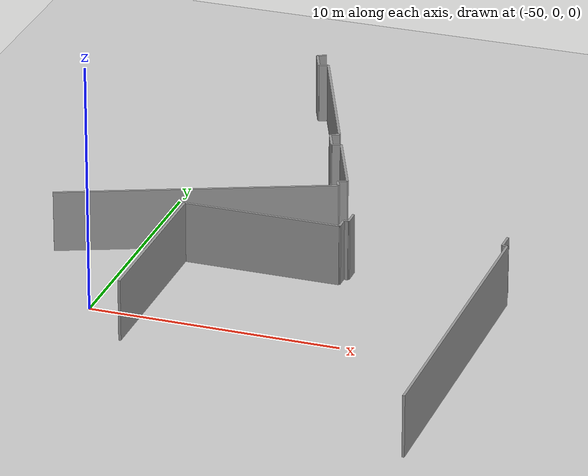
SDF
<sdf version="1.6">
 <world name="default">
  <model name="ground_plane">
   <static>1</static>
   <link name="link">
    <collision name="collision">
     <geometry><plane><normal>0 0 1</normal><size>100 100</size></plane></geometry>
     <surface><friction><ode><mu>100</mu><mu2>50</mu2></ode></friction></surface>
    </collision>
    <visual name="visual">
     <cast_shadows>0</cast_shadows>
     <geometry><plane><normal>0 0 1</normal><size>100 100</size></plane></geometry>
     <material>
      <script><uri>file://media/materials/scripts/gazebo.material</uri><name>Gazebo/Grey</name></script>
     </material>
    </visual>
   </link>
  </model>
  <model name="0510032192_A_40_1_203">
   <static>1</static>
   <link name="Wall_179">
    <collision name="Wall_179_Collision">
     <geometry><box><size>0.381804063913 0.1 2.5</size></box></geometry>
     <pose>0.190902031956 0 1.25 0 0 0</pose>
    </collision>
    <visual name="Wall_179_Visual">
     <pose>0.190902031956 0 1.25 0 0 0</pose>
     <geometry><box><size>0.381804063913 0.1 2.5</size></box></geometry>
     <material>
      <script><uri>file://media/materials/scripts/gazebo.material</uri><name>Gazebo/Grey</name></script>
      <ambient>1 1 1 1</ambient>
     </material>
    </visual>
    <pose>17.2577478124 -3.18431437341 0 0 0 -2.71505056109</pose>
   </link>
   <link name="Wall_180">
    <collision name="Wall_180_Collision">
     <geometry><box><size>0.983292808568 0.1 2.5</size></box></geometry>
     <pose>0.491646404284 0 1.25 0 0 0</pose>
    </collision>
    <visual name="Wall_180_Visual">
     <pose>0.491646404284 0 1.25 0 0 0</pose>
     <geometry><box><size>0.983292808568 0.1 2.5</size></box></geometry>
     <material>
      <script><uri>file://media/materials/scripts/gazebo.material</uri><name>Gazebo/Grey</name></script>
      <ambient>1 1 1 1</ambient>
     </material>
    </visual>
    <pose>16.9101527004 -3.34227633494 0 0 0 -1.18198060969</pose>
   </link>
   <link name="Wall_181">
    <collision name="Wall_181_Collision">
     <geometry><box><size>0.380269495872 0.1 2.5</size></box></geometry>
     <pose>0.190134747936 0 1.25 0 0 0</pose>
    </collision>
    <visual name="Wall_181_Visual">
     <pose>0.190134747936 0 1.25 0 0 0</pose>
     <geometry><box><size>0.380269495872 0.1 2.5</size></box></geometry>
     <material>
      <script><uri>file://media/materials/scripts/gazebo.material</uri><name>Gazebo/Grey</name></script>
      <ambient>1 1 1 1</ambient>
     </material>
    </visual>
    <pose>17.2829119193 -4.25217485242 0 0 0 0.374238072979</pose>
   </link>
   <link name="Wall_182">
    <collision name="Wall_182_Collision">
     <geometry><box><size>6.79059436841 0.1 2.5</size></box></geometry>
     <pose>3.39529718421 0 1.25 0 0 0</pose>
    </collision>
    <visual name="Wall_182_Visual">
     <pose>3.39529718421 0 1.25 0 0 0</pose>
     <geometry><box><size>6.79059436841 0.1 2.5</size></box></geometry>
     <material>
      <script><uri>file://media/materials/scripts/gazebo.material</uri><name>Gazebo/Grey</name></script>
      <ambient>1 1 1 1</ambient>
     </material>
    </visual>
    <pose>17.6368616038 -4.11316222588 0 0 0 -1.18194463115</pose>
   </link>
   <link name="Wall_183">
    <collision name="Wall_183_Collision">
     <geometry><box><size>0.365679224966 0.1 2.5</size></box></geometry>
     <pose>0.182839612483 0 1.25 0 0 0</pose>
    </collision>
    <visual name="Wall_183_Visual">
     <pose>0.182839612483 0 1.25 0 0 0</pose>
     <geometry><box><size>0.365679224966 0.1 2.5</size></box></geometry>
     <material>
      <script><uri>file://media/materials/scripts/gazebo.material</uri><name>Gazebo/Grey</name></script>
      <ambient>1 1 1 1</ambient>
     </material>
    </visual>
    <pose>20.2113530791 -10.396804921 0 0 0 -2.77586606899</pose>
   </link>
   <link name="Wall_184">
    <collision name="Wall_184_Collision">
     <geometry><box><size>0.974312886365 0.1 2.5</size></box></geometry>
     <pose>0.487156443183 0 1.25 0 0 0</pose>
    </collision>
    <visual name="Wall_184_Visual">
     <pose>0.487156443183 0 1.25 0 0 0</pose>
     <geometry><box><size>0.974312886365 0.1 2.5</size></box></geometry>
     <material>
      <script><uri>file://media/materials/scripts/gazebo.material</uri><name>Gazebo/Grey</name></script>
      <ambient>1 1 1 1</ambient>
     </material>
    </visual>
    <pose>19.8698583566 -10.5275820216 0 0 0 -1.18060079987</pose>
   </link>
   <link name="Wall_185">
    <collision name="Wall_185_Collision">
     <geometry><box><size>0.368379732384 0.1 2.5</size></box></geometry>
     <pose>0.184189866192 0 1.25 0 0 0</pose>
    </collision>
    <visual name="Wall_185_Visual">
     <pose>0.184189866192 0 1.25 0 0 0</pose>
     <geometry><box><size>0.368379732384 0.1 2.5</size></box></geometry>
     <material>
      <script><uri>file://media/materials/scripts/gazebo.material</uri><name>Gazebo/Grey</name></script>
      <ambient>1 1 1 1</ambient>
     </material>
    </visual>
    <pose>20.2404570208 -11.4286603926 0 0 0 0.384414359011</pose>
   </link>
   <link name="Wall_186">
    <collision name="Wall_186_Collision">
     <geometry><box><size>3.37232373218 0.1 2.5</size></box></geometry>
     <pose>1.68616186609 0 1.25 0 0 0</pose>
    </collision>
    <visual name="Wall_186_Visual">
     <pose>1.68616186609 0 1.25 0 0 0</pose>
     <geometry><box><size>3.37232373218 0.1 2.5</size></box></geometry>
     <material>
      <script><uri>file://media/materials/scripts/gazebo.material</uri><name>Gazebo/Grey</name></script>
      <ambient>1 1 1 1</ambient>
     </material>
    </visual>
    <pose>20.5819517434 -11.2905119879 0 0 0 -1.17949847303</pose>
   </link>
   <link name="Wall_187">
    <collision name="Wall_187_Collision">
     <geometry><box><size>0.364452296458 0.1 2.5</size></box></geometry>
     <pose>0.182226148229 0 1.25 0 0 0</pose>
    </collision>
    <visual name="Wall_187_Visual">
     <pose>0.182226148229 0 1.25 0 0 0</pose>
     <geometry><box><size>0.364452296458 0.1 2.5</size></box></geometry>
     <material>
      <script><uri>file://media/materials/scripts/gazebo.material</uri><name>Gazebo/Grey</name></script>
      <ambient>1 1 1 1</ambient>
     </material>
    </visual>
    <pose>21.8681172037 -14.4079381319 0 0 0 -2.73161826077</pose>
   </link>
   <link name="Wall_188">
    <collision name="Wall_188_Collision">
     <geometry><box><size>0.365679224966 0.1 2.5</size></box></geometry>
     <pose>0.182839612483 0 1.25 0 0 0</pose>
    </collision>
    <visual name="Wall_188_Visual">
     <pose>0.182839612483 0 1.25 0 0 0</pose>
     <geometry><box><size>0.365679224966 0.1 2.5</size></box></geometry>
     <material>
      <script><uri>file://media/materials/scripts/gazebo.material</uri><name>Gazebo/Grey</name></script>
      <ambient>1 1 1 1</ambient>
     </material>
    </visual>
    <pose>21.5338666938 -14.5532036577 0 0 0 -1.20506974219</pose>
   </link>
   <link name="Wall_189">
    <collision name="Wall_189_Collision">
     <geometry><box><size>11.0727644392 0.1 2.5</size></box></geometry>
     <pose>5.53638221961 0 1.25 0 0 0</pose>
    </collision>
    <visual name="Wall_189_Visual">
     <pose>5.53638221961 0 1.25 0 0 0</pose>
     <geometry><box><size>11.0727644392 0.1 2.5</size></box></geometry>
     <material>
      <script><uri>file://media/materials/scripts/gazebo.material</uri><name>Gazebo/Grey</name></script>
      <ambient>1 1 1 1</ambient>
     </material>
    </visual>
    <pose>21.6646437944 -14.8946983802 0 0 0 -2.75228355561</pose>
   </link>
   <link name="Wall_204">
    <collision name="Wall_204_Collision">
     <geometry><box><size>7.1557569249 0.1 2.5</size></box></geometry>
     <pose>3.57787846245 0 1.25 0 0 0</pose>
    </collision>
    <visual name="Wall_204_Visual">
     <pose>3.57787846245 0 1.25 0 0 0</pose>
     <geometry><box><size>7.1557569249 0.1 2.5</size></box></geometry>
     <material>
      <script><uri>file://media/materials/scripts/gazebo.material</uri><name>Gazebo/Grey</name></script>
      <ambient>1 1 1 1</ambient>
     </material>
    </visual>
    <pose>16.5647181429 -25.4670547192 0 0 0 1.57079632679</pose>
   </link>
   <link name="Wall_205">
    <collision name="Wall_205_Collision">
     <geometry><box><size>6.28441795294 0.1 2.5</size></box></geometry>
     <pose>3.14220897647 0 1.25 0 0 0</pose>
    </collision>
    <visual name="Wall_205_Visual">
     <pose>3.14220897647 0 1.25 0 0 0</pose>
     <geometry><box><size>6.28441795294 0.1 2.5</size></box></geometry>
     <material>
      <script><uri>file://media/materials/scripts/gazebo.material</uri><name>Gazebo/Grey</name></script>
      <ambient>1 1 1 1</ambient>
     </material>
    </visual>
    <pose>16.5647181429 -18.3112977943 0 0 0 0.0</pose>
   </link>
   <link name="Wall_206">
    <collision name="Wall_206_Collision">
     <geometry><box><size>0.51001798344 0.1 2.5</size></box></geometry>
     <pose>0.25500899172 0 1.25 0 0 0</pose>
    </collision>
    <visual name="Wall_206_Visual">
     <pose>0.25500899172 0 1.25 0 0 0</pose>
     <geometry><box><size>0.51001798344 0.1 2.5</size></box></geometry>
     <material>
      <script><uri>file://media/materials/scripts/gazebo.material</uri><name>Gazebo/Grey</name></script>
      <ambient>1 1 1 1</ambient>
     </material>
    </visual>
    <pose>22.8491360959 -18.3112977943 0 0 0 1.57079632679</pose>
   </link>
   <link name="Wall_207">
    <collision name="Wall_207_Collision">
     <geometry><box><size>0.19610210527 0.1 2.5</size></box></geometry>
     <pose>0.0980510526349 0 1.25 0 0 0</pose>
    </collision>
    <visual name="Wall_207_Visual">
     <pose>0.0980510526349 0 1.25 0 0 0</pose>
     <geometry><box><size>0.19610210527 0.1 2.5</size></box></geometry>
     <material>
      <script><uri>file://media/materials/scripts/gazebo.material</uri><name>Gazebo/Grey</name></script>
      <ambient>1 1 1 1</ambient>
     </material>
    </visual>
    <pose>22.8491360959 -17.8012798109 0 0 0 0.0</pose>
   </link>
   <link name="Wall_208">
    <collision name="Wall_208_Collision">
     <geometry><box><size>0.62312937274 0.1 2.5</size></box></geometry>
     <pose>0.31156468637 0 1.25 0 0 0</pose>
    </collision>
    <visual name="Wall_208_Visual">
     <pose>0.31156468637 0 1.25 0 0 0</pose>
     <geometry><box><size>0.62312937274 0.1 2.5</size></box></geometry>
     <material>
      <script><uri>file://media/materials/scripts/gazebo.material</uri><name>Gazebo/Grey</name></script>
      <ambient>1 1 1 1</ambient>
     </material>
    </visual>
    <pose>23.0452382011 -17.8012798109 0 0 0 1.57079632679</pose>
   </link>
   <link name="Wall_209">
    <collision name="Wall_209_Collision">
     <geometry><box><size>0.713745575629 0.1 2.5</size></box></geometry>
     <pose>0.356872787814 0 1.25 0 0 0</pose>
    </collision>
    <visual name="Wall_209_Visual">
     <pose>0.356872787814 0 1.25 0 0 0</pose>
     <geometry><box><size>0.713745575629 0.1 2.5</size></box></geometry>
     <material>
      <script><uri>file://media/materials/scripts/gazebo.material</uri><name>Gazebo/Grey</name></script>
      <ambient>1 1 1 1</ambient>
     </material>
    </visual>
    <pose>29.2138758444 -17.1781504381 0 0 0 -1.57079632679</pose>
   </link>
   <link name="Wall_210">
    <collision name="Wall_210_Collision">
     <geometry><box><size>0.190255898632 0.1 2.5</size></box></geometry>
     <pose>0.0951279493159 0 1.25 0 0 0</pose>
    </collision>
    <visual name="Wall_210_Visual">
     <pose>0.0951279493159 0 1.25 0 0 0</pose>
     <geometry><box><size>0.190255898632 0.1 2.5</size></box></geometry>
     <material>
      <script><uri>file://media/materials/scripts/gazebo.material</uri><name>Gazebo/Grey</name></script>
      <ambient>1 1 1 1</ambient>
     </material>
    </visual>
    <pose>29.2138758444 -17.8918960138 0 0 0 0.0</pose>
   </link>
   <link name="Wall_211">
    <collision name="Wall_211_Collision">
     <geometry><box><size>12.8485641844 0.1 2.5</size></box></geometry>
     <pose>6.42428209218 0 1.25 0 0 0</pose>
    </collision>
    <visual name="Wall_211_Visual">
     <pose>6.42428209218 0 1.25 0 0 0</pose>
     <geometry><box><size>12.8485641844 0.1 2.5</size></box></geometry>
     <material>
      <script><uri>file://media/materials/scripts/gazebo.material</uri><name>Gazebo/Grey</name></script>
      <ambient>1 1 1 1</ambient>
     </material>
    </visual>
    <pose>29.404131743 -17.8918960138 0 0 0 -1.57079632679</pose>
   </link>
   <pose>-64.55 23.3936883209 0 0 0 0</pose>
  </model>
 </world>
</sdf>
